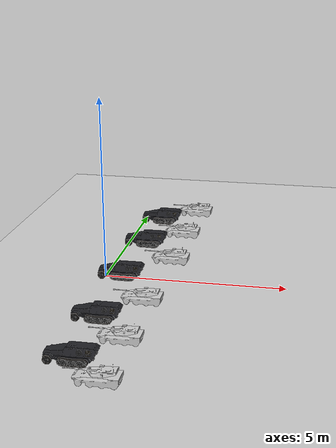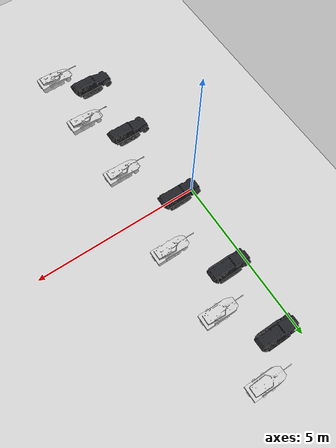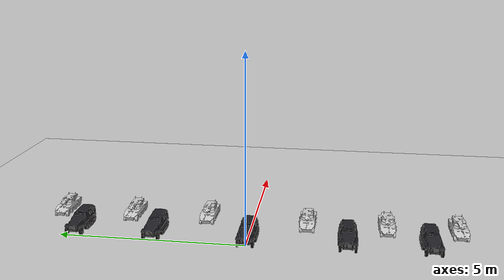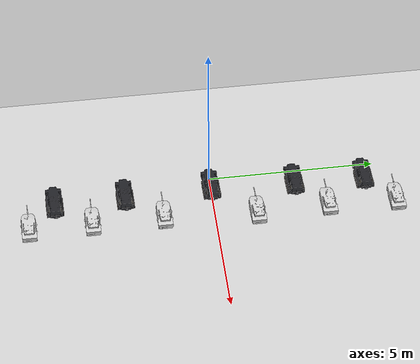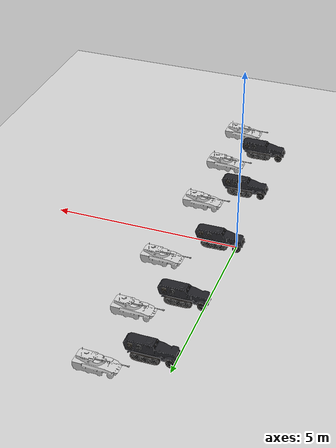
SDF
<sdf version="1.7">
 <world name="default">
  <scene><sky><clouds><speed>12</speed></clouds></sky></scene>
  <light name="sun" type="directional">
   <pose>0 0 10 0 -0 0</pose>
   <diffuse>0.8 0.8 0.8 1</diffuse>
   <specular>0.2 0.2 0.2 1</specular>
   <attenuation>
    <range>1000</range>
    <constant>0.9</constant>
    <linear>0.01</linear>
    <quadratic>0.001</quadratic>
   </attenuation>
   <direction>-0.5 0.1 -0.9</direction>
   <spot><inner_angle>0</inner_angle><outer_angle>0</outer_angle><falloff>0</falloff></spot>
  </light>
  <model name="ground_plane">
   <static>1</static>
   <link name="link">
    <collision name="collision">
     <geometry><plane><normal>0 0 1</normal><size>100 100</size></plane></geometry>
     <surface>
      <contact><collide_bitmask>65535</collide_bitmask></contact>
      <friction><ode><mu>100</mu><mu2>50</mu2></ode></friction>
     </surface>
    </collision>
    <visual name="visual">
     <cast_shadows>0</cast_shadows>
     <geometry><plane><normal>0 0 1</normal><size>100 100</size></plane></geometry>
     <material>
      <script><uri>file://media/materials/scripts/gazebo.material</uri><name>Gazebo/Grey</name></script>
     </material>
    </visual>
   </link>
  </model>
  <gravity>0 0 -9.8</gravity>
  <magnetic_field>6e-06 2.3e-05 -4.2e-05</magnetic_field>
  <atmosphere type="adiabatic"/>
  <physics type="ode">
   <max_step_size>0.001</max_step_size>
   <real_time_factor>1</real_time_factor>
   <real_time_update_rate>1000</real_time_update_rate>
  </physics>
  <scene><ambient>0.4 0.4 0.4 1</ambient><background>0.7 0.7 0.7 1</background><shadows>1</shadows></scene>
  <spherical_coordinates>
   <surface_model>EARTH_WGS84</surface_model>
   <latitude_deg>0</latitude_deg>
   <longitude_deg>0</longitude_deg>
   <elevation>0</elevation>
   <heading_deg>0</heading_deg>
  </spherical_coordinates>
  <model name="armored_car">
   <static>1</static>
   <link name="link">
    <inertial>
     <mass>1</mass>
     <inertia>
      <ixx>0.166667</ixx>
      <ixy>0</ixy>
      <ixz>0</ixz>
      <iyy>0.166667</iyy>
      <iyz>0</iyz>
      <izz>0.166667</izz>
     </inertia>
    </inertial>
    <self_collide>1</self_collide>
    <gravity>0</gravity>
    <collision name="collision">
     <geometry>
      <mesh><uri>model://armored_car/meshes/armored_car.dae</uri><scale>0.25 0.25 0.25</scale></mesh>
     </geometry>
     <surface>
      <friction>
       <ode><mu>1</mu><mu2>1</mu2><fdir1>0 0 0</fdir1><slip1>0</slip1><slip2>0</slip2></ode>
       <torsional>
        <coefficient>1</coefficient>
        <patch_radius>0</patch_radius>
        <surface_radius>0</surface_radius>
        <use_patch_radius>1</use_patch_radius>
        <ode><slip>0</slip></ode>
       </torsional>
      </friction>
      <bounce><restitution_coefficient>0</restitution_coefficient><threshold>1e+06</threshold></bounce>
      <contact>
       <collide_without_contact>0</collide_without_contact>
       <collide_without_contact_bitmask>1</collide_without_contact_bitmask>
       <collide_bitmask>1</collide_bitmask>
       <ode>
        <soft_cfm>0</soft_cfm>
        <soft_erp>0.2</soft_erp>
        <kp>1e+13</kp>
        <kd>1</kd>
        <max_vel>0.01</max_vel>
        <min_depth>0</min_depth>
       </ode>
       <bullet>
        <split_impulse>1</split_impulse>
        <split_impulse_penetration_threshold>-0.01</split_impulse_penetration_threshold>
        <soft_cfm>0</soft_cfm>
        <soft_erp>0.2</soft_erp>
        <kp>1e+13</kp>
        <kd>1</kd>
       </bullet>
      </contact>
     </surface>
    </collision>
    <visual name="visual">
     <geometry>
      <mesh><uri>model://armored_car/meshes/armored_car.dae</uri><scale>0.25 0.25 0.25</scale></mesh>
     </geometry>
    </visual>
   </link>
   <pose>0.512497 0.008828 0 0 0 -3.13378</pose>
  </model>
  <model name="armored_car_clone">
   <static>1</static>
   <link name="link">
    <inertial>
     <mass>1</mass>
     <inertia>
      <ixx>0.166667</ixx>
      <ixy>0</ixy>
      <ixz>0</ixz>
      <iyy>0.166667</iyy>
      <iyz>0</iyz>
      <izz>0.166667</izz>
     </inertia>
    </inertial>
    <self_collide>1</self_collide>
    <gravity>0</gravity>
    <collision name="collision">
     <geometry>
      <mesh><uri>model://armored_car/meshes/armored_car.dae</uri><scale>0.25 0.25 0.25</scale></mesh>
     </geometry>
     <surface>
      <friction>
       <ode><mu>1</mu><mu2>1</mu2><fdir1>0 0 0</fdir1><slip1>0</slip1><slip2>0</slip2></ode>
       <torsional>
        <coefficient>1</coefficient>
        <patch_radius>0</patch_radius>
        <surface_radius>0</surface_radius>
        <use_patch_radius>1</use_patch_radius>
        <ode><slip>0</slip></ode>
       </torsional>
      </friction>
      <bounce><restitution_coefficient>0</restitution_coefficient><threshold>1e+06</threshold></bounce>
      <contact>
       <collide_without_contact>0</collide_without_contact>
       <collide_without_contact_bitmask>1</collide_without_contact_bitmask>
       <collide_bitmask>1</collide_bitmask>
       <ode>
        <soft_cfm>0</soft_cfm>
        <soft_erp>0.2</soft_erp>
        <kp>1e+13</kp>
        <kd>1</kd>
        <max_vel>0.01</max_vel>
        <min_depth>0</min_depth>
       </ode>
       <bullet>
        <split_impulse>1</split_impulse>
        <split_impulse_penetration_threshold>-0.01</split_impulse_penetration_threshold>
        <soft_cfm>0</soft_cfm>
        <soft_erp>0.2</soft_erp>
        <kp>1e+13</kp>
        <kd>1</kd>
       </bullet>
      </contact>
     </surface>
    </collision>
    <visual name="visual">
     <geometry>
      <mesh><uri>model://armored_car/meshes/armored_car.dae</uri><scale>0.25 0.25 0.25</scale></mesh>
     </geometry>
    </visual>
   </link>
   <pose>0.614036 2.52574 0 0 0 -3.13378</pose>
  </model>
  <model name="armored_car_clone_0">
   <static>1</static>
   <link name="link">
    <inertial>
     <mass>1</mass>
     <inertia>
      <ixx>0.166667</ixx>
      <ixy>0</ixy>
      <ixz>0</ixz>
      <iyy>0.166667</iyy>
      <iyz>0</iyz>
      <izz>0.166667</izz>
     </inertia>
    </inertial>
    <self_collide>1</self_collide>
    <gravity>0</gravity>
    <collision name="collision">
     <geometry>
      <mesh><uri>model://armored_car/meshes/armored_car.dae</uri><scale>0.25 0.25 0.25</scale></mesh>
     </geometry>
     <surface>
      <friction>
       <ode><mu>1</mu><mu2>1</mu2><fdir1>0 0 0</fdir1><slip1>0</slip1><slip2>0</slip2></ode>
       <torsional>
        <coefficient>1</coefficient>
        <patch_radius>0</patch_radius>
        <surface_radius>0</surface_radius>
        <use_patch_radius>1</use_patch_radius>
        <ode><slip>0</slip></ode>
       </torsional>
      </friction>
      <bounce><restitution_coefficient>0</restitution_coefficient><threshold>1e+06</threshold></bounce>
      <contact>
       <collide_without_contact>0</collide_without_contact>
       <collide_without_contact_bitmask>1</collide_without_contact_bitmask>
       <collide_bitmask>1</collide_bitmask>
       <ode>
        <soft_cfm>0</soft_cfm>
        <soft_erp>0.2</soft_erp>
        <kp>1e+13</kp>
        <kd>1</kd>
        <max_vel>0.01</max_vel>
        <min_depth>0</min_depth>
       </ode>
       <bullet>
        <split_impulse>1</split_impulse>
        <split_impulse_penetration_threshold>-0.01</split_impulse_penetration_threshold>
        <soft_cfm>0</soft_cfm>
        <soft_erp>0.2</soft_erp>
        <kp>1e+13</kp>
        <kd>1</kd>
       </bullet>
      </contact>
     </surface>
    </collision>
    <visual name="visual">
     <geometry>
      <mesh><uri>model://armored_car/meshes/armored_car.dae</uri><scale>0.25 0.25 0.25</scale></mesh>
     </geometry>
    </visual>
   </link>
   <pose>0.601211 -2.59803 0 0 0 -3.13378</pose>
  </model>
  <model name="armored_car_clone_1">
   <static>1</static>
   <link name="link">
    <inertial>
     <mass>1</mass>
     <inertia>
      <ixx>0.166667</ixx>
      <ixy>0</ixy>
      <ixz>0</ixz>
      <iyy>0.166667</iyy>
      <iyz>0</iyz>
      <izz>0.166667</izz>
     </inertia>
    </inertial>
    <self_collide>1</self_collide>
    <gravity>0</gravity>
    <collision name="collision">
     <geometry>
      <mesh><uri>model://armored_car/meshes/armored_car.dae</uri><scale>0.25 0.25 0.25</scale></mesh>
     </geometry>
     <surface>
      <friction>
       <ode><mu>1</mu><mu2>1</mu2><fdir1>0 0 0</fdir1><slip1>0</slip1><slip2>0</slip2></ode>
       <torsional>
        <coefficient>1</coefficient>
        <patch_radius>0</patch_radius>
        <surface_radius>0</surface_radius>
        <use_patch_radius>1</use_patch_radius>
        <ode><slip>0</slip></ode>
       </torsional>
      </friction>
      <bounce><restitution_coefficient>0</restitution_coefficient><threshold>1e+06</threshold></bounce>
      <contact>
       <collide_without_contact>0</collide_without_contact>
       <collide_without_contact_bitmask>1</collide_without_contact_bitmask>
       <collide_bitmask>1</collide_bitmask>
       <ode>
        <soft_cfm>0</soft_cfm>
        <soft_erp>0.2</soft_erp>
        <kp>1e+13</kp>
        <kd>1</kd>
        <max_vel>0.01</max_vel>
        <min_depth>0</min_depth>
       </ode>
       <bullet>
        <split_impulse>1</split_impulse>
        <split_impulse_penetration_threshold>-0.01</split_impulse_penetration_threshold>
        <soft_cfm>0</soft_cfm>
        <soft_erp>0.2</soft_erp>
        <kp>1e+13</kp>
        <kd>1</kd>
       </bullet>
      </contact>
     </surface>
    </collision>
    <visual name="visual">
     <geometry>
      <mesh><uri>model://armored_car/meshes/armored_car.dae</uri><scale>0.25 0.25 0.25</scale></mesh>
     </geometry>
    </visual>
   </link>
   <pose>0.647221 4.63535 0 0 0 -3.13378</pose>
  </model>
  <model name="armored_car_clone_2">
   <static>1</static>
   <link name="link">
    <inertial>
     <mass>1</mass>
     <inertia>
      <ixx>0.166667</ixx>
      <ixy>0</ixy>
      <ixz>0</ixz>
      <iyy>0.166667</iyy>
      <iyz>0</iyz>
      <izz>0.166667</izz>
     </inertia>
    </inertial>
    <self_collide>1</self_collide>
    <gravity>0</gravity>
    <collision name="collision">
     <geometry>
      <mesh><uri>model://armored_car/meshes/armored_car.dae</uri><scale>0.25 0.25 0.25</scale></mesh>
     </geometry>
     <surface>
      <friction>
       <ode><mu>1</mu><mu2>1</mu2><fdir1>0 0 0</fdir1><slip1>0</slip1><slip2>0</slip2></ode>
       <torsional>
        <coefficient>1</coefficient>
        <patch_radius>0</patch_radius>
        <surface_radius>0</surface_radius>
        <use_patch_radius>1</use_patch_radius>
        <ode><slip>0</slip></ode>
       </torsional>
      </friction>
      <bounce><restitution_coefficient>0</restitution_coefficient><threshold>1e+06</threshold></bounce>
      <contact>
       <collide_without_contact>0</collide_without_contact>
       <collide_without_contact_bitmask>1</collide_without_contact_bitmask>
       <collide_bitmask>1</collide_bitmask>
       <ode>
        <soft_cfm>0</soft_cfm>
        <soft_erp>0.2</soft_erp>
        <kp>1e+13</kp>
        <kd>1</kd>
        <max_vel>0.01</max_vel>
        <min_depth>0</min_depth>
       </ode>
       <bullet>
        <split_impulse>1</split_impulse>
        <split_impulse_penetration_threshold>-0.01</split_impulse_penetration_threshold>
        <soft_cfm>0</soft_cfm>
        <soft_erp>0.2</soft_erp>
        <kp>1e+13</kp>
        <kd>1</kd>
       </bullet>
      </contact>
     </surface>
    </collision>
    <visual name="visual">
     <geometry>
      <mesh><uri>model://armored_car/meshes/armored_car.dae</uri><scale>0.25 0.25 0.25</scale></mesh>
     </geometry>
    </visual>
   </link>
   <pose>0.650314 -4.70932 0 0 0 -3.13378</pose>
  </model>
  <model name="tank">
   <static>1</static>
   <link name="link">
    <inertial>
     <mass>1</mass>
     <inertia>
      <ixx>0.166667</ixx>
      <ixy>0</ixy>
      <ixz>0</ixz>
      <iyy>0.166667</iyy>
      <iyz>0</iyz>
      <izz>0.166667</izz>
     </inertia>
    </inertial>
    <self_collide>1</self_collide>
    <gravity>0</gravity>
    <collision name="collision">
     <geometry><mesh><uri>model://tank/meshes/tank.dae</uri><scale>0.1 0.1 0.1</scale></mesh></geometry>
     <surface>
      <friction>
       <ode><mu>1</mu><mu2>1</mu2><fdir1>0 0 0</fdir1><slip1>0</slip1><slip2>0</slip2></ode>
       <torsional>
        <coefficient>1</coefficient>
        <patch_radius>0</patch_radius>
        <surface_radius>0</surface_radius>
        <use_patch_radius>1</use_patch_radius>
        <ode><slip>0</slip></ode>
       </torsional>
      </friction>
      <bounce><restitution_coefficient>0</restitution_coefficient><threshold>1e+06</threshold></bounce>
      <contact>
       <collide_without_contact>0</collide_without_contact>
       <collide_without_contact_bitmask>1</collide_without_contact_bitmask>
       <collide_bitmask>1</collide_bitmask>
       <ode>
        <soft_cfm>0</soft_cfm>
        <soft_erp>0.2</soft_erp>
        <kp>1e+13</kp>
        <kd>1</kd>
        <max_vel>0.01</max_vel>
        <min_depth>0</min_depth>
       </ode>
       <bullet>
        <split_impulse>1</split_impulse>
        <split_impulse_penetration_threshold>-0.01</split_impulse_penetration_threshold>
        <soft_cfm>0</soft_cfm>
        <soft_erp>0.2</soft_erp>
        <kp>1e+13</kp>
        <kd>1</kd>
       </bullet>
      </contact>
     </surface>
    </collision>
    <visual name="visual">
     <geometry><mesh><uri>model://tank/meshes/tank.dae</uri><scale>0.1 0.1 0.1</scale></mesh></geometry>
    </visual>
   </link>
   <pose>1.59078 1.25865 0 0 -0 -3.13997</pose>
  </model>
  <model name="tank_clone">
   <static>1</static>
   <link name="link">
    <inertial>
     <mass>1</mass>
     <inertia>
      <ixx>0.166667</ixx>
      <ixy>0</ixy>
      <ixz>0</ixz>
      <iyy>0.166667</iyy>
      <iyz>0</iyz>
      <izz>0.166667</izz>
     </inertia>
    </inertial>
    <self_collide>1</self_collide>
    <gravity>0</gravity>
    <collision name="collision">
     <geometry><mesh><uri>model://tank/meshes/tank.dae</uri><scale>0.1 0.1 0.1</scale></mesh></geometry>
     <surface>
      <friction>
       <ode><mu>1</mu><mu2>1</mu2><fdir1>0 0 0</fdir1><slip1>0</slip1><slip2>0</slip2></ode>
       <torsional>
        <coefficient>1</coefficient>
        <patch_radius>0</patch_radius>
        <surface_radius>0</surface_radius>
        <use_patch_radius>1</use_patch_radius>
        <ode><slip>0</slip></ode>
       </torsional>
      </friction>
      <bounce><restitution_coefficient>0</restitution_coefficient><threshold>1e+06</threshold></bounce>
      <contact>
       <collide_without_contact>0</collide_without_contact>
       <collide_without_contact_bitmask>1</collide_without_contact_bitmask>
       <collide_bitmask>1</collide_bitmask>
       <ode>
        <soft_cfm>0</soft_cfm>
        <soft_erp>0.2</soft_erp>
        <kp>1e+13</kp>
        <kd>1</kd>
        <max_vel>0.01</max_vel>
        <min_depth>0</min_depth>
       </ode>
       <bullet>
        <split_impulse>1</split_impulse>
        <split_impulse_penetration_threshold>-0.01</split_impulse_penetration_threshold>
        <soft_cfm>0</soft_cfm>
        <soft_erp>0.2</soft_erp>
        <kp>1e+13</kp>
        <kd>1</kd>
       </bullet>
      </contact>
     </surface>
    </collision>
    <visual name="visual">
     <geometry><mesh><uri>model://tank/meshes/tank.dae</uri><scale>0.1 0.1 0.1</scale></mesh></geometry>
    </visual>
   </link>
   <pose>1.42578 -1.51317 0 0 0 -3.13997</pose>
  </model>
  <model name="tank_clone_0">
   <static>1</static>
   <link name="link">
    <inertial>
     <mass>1</mass>
     <inertia>
      <ixx>0.166667</ixx>
      <ixy>0</ixy>
      <ixz>0</ixz>
      <iyy>0.166667</iyy>
      <iyz>0</iyz>
      <izz>0.166667</izz>
     </inertia>
    </inertial>
    <self_collide>1</self_collide>
    <gravity>0</gravity>
    <collision name="collision">
     <geometry><mesh><uri>model://tank/meshes/tank.dae</uri><scale>0.1 0.1 0.1</scale></mesh></geometry>
     <surface>
      <friction>
       <ode><mu>1</mu><mu2>1</mu2><fdir1>0 0 0</fdir1><slip1>0</slip1><slip2>0</slip2></ode>
       <torsional>
        <coefficient>1</coefficient>
        <patch_radius>0</patch_radius>
        <surface_radius>0</surface_radius>
        <use_patch_radius>1</use_patch_radius>
        <ode><slip>0</slip></ode>
       </torsional>
      </friction>
      <bounce><restitution_coefficient>0</restitution_coefficient><threshold>1e+06</threshold></bounce>
      <contact>
       <collide_without_contact>0</collide_without_contact>
       <collide_without_contact_bitmask>1</collide_without_contact_bitmask>
       <collide_bitmask>1</collide_bitmask>
       <ode>
        <soft_cfm>0</soft_cfm>
        <soft_erp>0.2</soft_erp>
        <kp>1e+13</kp>
        <kd>1</kd>
        <max_vel>0.01</max_vel>
        <min_depth>0</min_depth>
       </ode>
       <bullet>
        <split_impulse>1</split_impulse>
        <split_impulse_penetration_threshold>-0.01</split_impulse_penetration_threshold>
        <soft_cfm>0</soft_cfm>
        <soft_erp>0.2</soft_erp>
        <kp>1e+13</kp>
        <kd>1</kd>
       </bullet>
      </contact>
     </surface>
    </collision>
    <visual name="visual">
     <geometry><mesh><uri>model://tank/meshes/tank.dae</uri><scale>0.1 0.1 0.1</scale></mesh></geometry>
    </visual>
   </link>
   <pose>1.42928 -3.64429 0 0 0 -3.13997</pose>
  </model>
  <model name="tank_clone_1">
   <static>1</static>
   <link name="link">
    <inertial>
     <mass>1</mass>
     <inertia>
      <ixx>0.166667</ixx>
      <ixy>0</ixy>
      <ixz>0</ixz>
      <iyy>0.166667</iyy>
      <iyz>0</iyz>
      <izz>0.166667</izz>
     </inertia>
    </inertial>
    <self_collide>1</self_collide>
    <gravity>0</gravity>
    <collision name="collision">
     <geometry><mesh><uri>model://tank/meshes/tank.dae</uri><scale>0.1 0.1 0.1</scale></mesh></geometry>
     <surface>
      <friction>
       <ode><mu>1</mu><mu2>1</mu2><fdir1>0 0 0</fdir1><slip1>0</slip1><slip2>0</slip2></ode>
       <torsional>
        <coefficient>1</coefficient>
        <patch_radius>0</patch_radius>
        <surface_radius>0</surface_radius>
        <use_patch_radius>1</use_patch_radius>
        <ode><slip>0</slip></ode>
       </torsional>
      </friction>
      <bounce><restitution_coefficient>0</restitution_coefficient><threshold>1e+06</threshold></bounce>
      <contact>
       <collide_without_contact>0</collide_without_contact>
       <collide_without_contact_bitmask>1</collide_without_contact_bitmask>
       <collide_bitmask>1</collide_bitmask>
       <ode>
        <soft_cfm>0</soft_cfm>
        <soft_erp>0.2</soft_erp>
        <kp>1e+13</kp>
        <kd>1</kd>
        <max_vel>0.01</max_vel>
        <min_depth>0</min_depth>
       </ode>
       <bullet>
        <split_impulse>1</split_impulse>
        <split_impulse_penetration_threshold>-0.01</split_impulse_penetration_threshold>
        <soft_cfm>0</soft_cfm>
        <soft_erp>0.2</soft_erp>
        <kp>1e+13</kp>
        <kd>1</kd>
       </bullet>
      </contact>
     </surface>
    </collision>
    <visual name="visual">
     <geometry><mesh><uri>model://tank/meshes/tank.dae</uri><scale>0.1 0.1 0.1</scale></mesh></geometry>
    </visual>
   </link>
   <pose>1.51642 3.40121 0 0 0 -3.13997</pose>
  </model>
  <model name="tank_clone_2">
   <static>1</static>
   <link name="link">
    <inertial>
     <mass>1</mass>
     <inertia>
      <ixx>0.166667</ixx>
      <ixy>0</ixy>
      <ixz>0</ixz>
      <iyy>0.166667</iyy>
      <iyz>0</iyz>
      <izz>0.166667</izz>
     </inertia>
    </inertial>
    <self_collide>1</self_collide>
    <gravity>0</gravity>
    <collision name="collision">
     <geometry><mesh><uri>model://tank/meshes/tank.dae</uri><scale>0.1 0.1 0.1</scale></mesh></geometry>
     <surface>
      <friction>
       <ode><mu>1</mu><mu2>1</mu2><fdir1>0 0 0</fdir1><slip1>0</slip1><slip2>0</slip2></ode>
       <torsional>
        <coefficient>1</coefficient>
        <patch_radius>0</patch_radius>
        <surface_radius>0</surface_radius>
        <use_patch_radius>1</use_patch_radius>
        <ode><slip>0</slip></ode>
       </torsional>
      </friction>
      <bounce><restitution_coefficient>0</restitution_coefficient><threshold>1e+06</threshold></bounce>
      <contact>
       <collide_without_contact>0</collide_without_contact>
       <collide_without_contact_bitmask>1</collide_without_contact_bitmask>
       <collide_bitmask>1</collide_bitmask>
       <ode>
        <soft_cfm>0</soft_cfm>
        <soft_erp>0.2</soft_erp>
        <kp>1e+13</kp>
        <kd>1</kd>
        <max_vel>0.01</max_vel>
        <min_depth>0</min_depth>
       </ode>
       <bullet>
        <split_impulse>1</split_impulse>
        <split_impulse_penetration_threshold>-0.01</split_impulse_penetration_threshold>
        <soft_cfm>0</soft_cfm>
        <soft_erp>0.2</soft_erp>
        <kp>1e+13</kp>
        <kd>1</kd>
       </bullet>
      </contact>
     </surface>
    </collision>
    <visual name="visual">
     <geometry><mesh><uri>model://tank/meshes/tank.dae</uri><scale>0.1 0.1 0.1</scale></mesh></geometry>
    </visual>
   </link>
   <pose>1.57474 5.44955 0 0 0 -3.13997</pose>
  </model>
  <model name="tank_clone_3">
   <static>1</static>
   <link name="link">
    <inertial>
     <mass>1</mass>
     <inertia>
      <ixx>0.166667</ixx>
      <ixy>0</ixy>
      <ixz>0</ixz>
      <iyy>0.166667</iyy>
      <iyz>0</iyz>
      <izz>0.166667</izz>
     </inertia>
    </inertial>
    <self_collide>1</self_collide>
    <gravity>0</gravity>
    <collision name="collision">
     <geometry><mesh><uri>model://tank/meshes/tank.dae</uri><scale>0.1 0.1 0.1</scale></mesh></geometry>
     <surface>
      <friction>
       <ode><mu>1</mu><mu2>1</mu2><fdir1>0 0 0</fdir1><slip1>0</slip1><slip2>0</slip2></ode>
       <torsional>
        <coefficient>1</coefficient>
        <patch_radius>0</patch_radius>
        <surface_radius>0</surface_radius>
        <use_patch_radius>1</use_patch_radius>
        <ode><slip>0</slip></ode>
       </torsional>
      </friction>
      <bounce><restitution_coefficient>0</restitution_coefficient><threshold>1e+06</threshold></bounce>
      <contact>
       <collide_without_contact>0</collide_without_contact>
       <collide_without_contact_bitmask>1</collide_without_contact_bitmask>
       <collide_bitmask>1</collide_bitmask>
       <ode>
        <soft_cfm>0</soft_cfm>
        <soft_erp>0.2</soft_erp>
        <kp>1e+13</kp>
        <kd>1</kd>
        <max_vel>0.01</max_vel>
        <min_depth>0</min_depth>
       </ode>
       <bullet>
        <split_impulse>1</split_impulse>
        <split_impulse_penetration_threshold>-0.01</split_impulse_penetration_threshold>
        <soft_cfm>0</soft_cfm>
        <soft_erp>0.2</soft_erp>
        <kp>1e+13</kp>
        <kd>1</kd>
       </bullet>
      </contact>
     </surface>
    </collision>
    <visual name="visual">
     <geometry><mesh><uri>model://tank/meshes/tank.dae</uri><scale>0.1 0.1 0.1</scale></mesh></geometry>
    </visual>
   </link>
   <pose>1.44437 -5.52542 0 0 0 -3.13997</pose>
  </model>
 </world>
</sdf>
